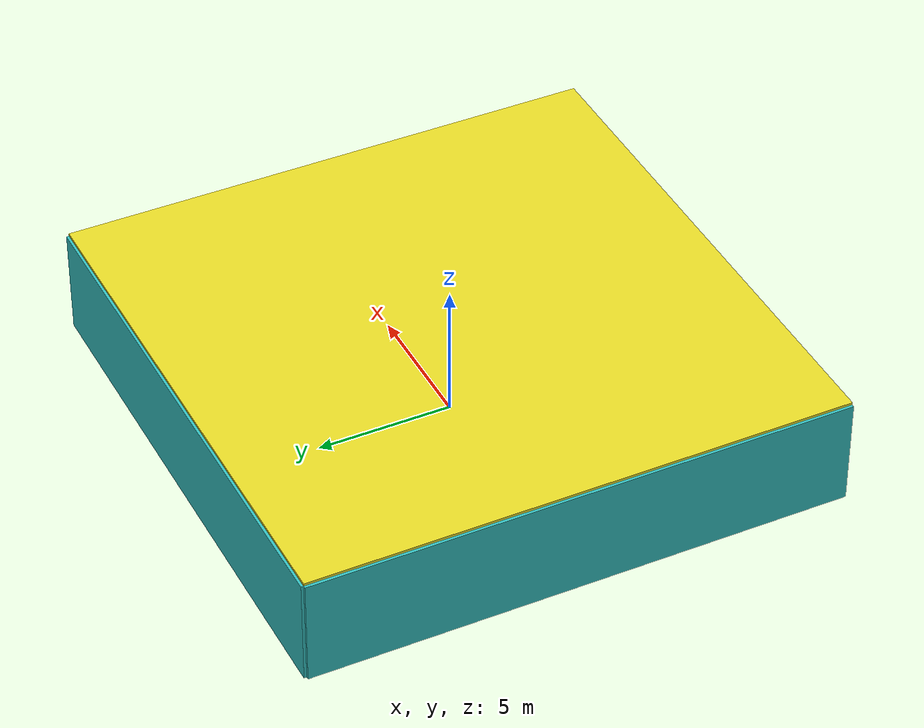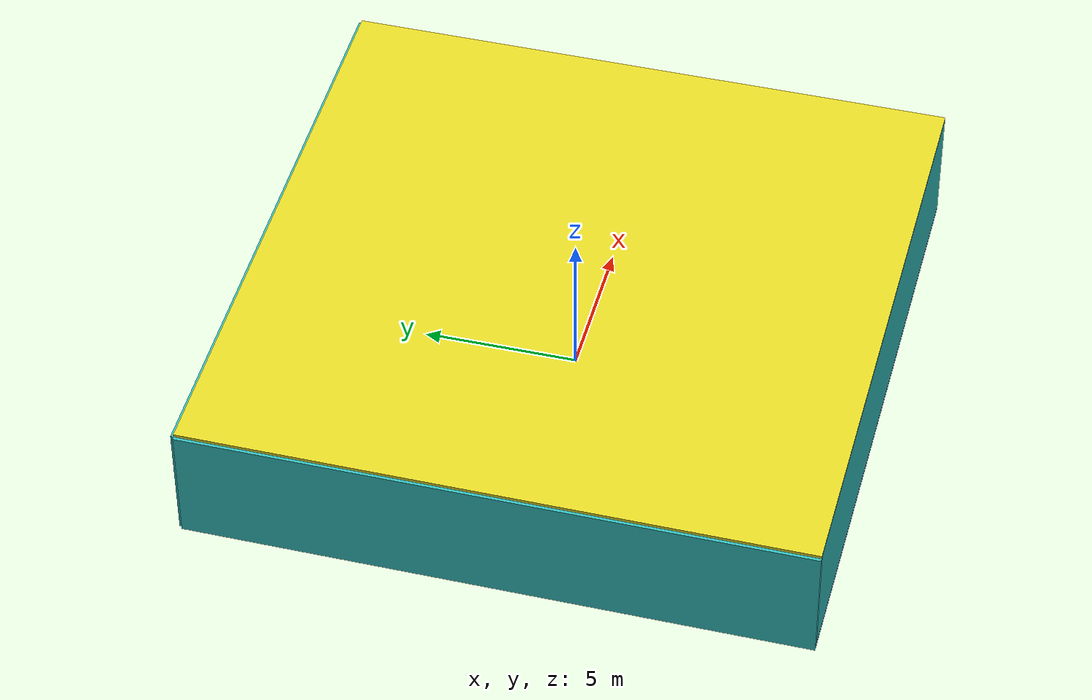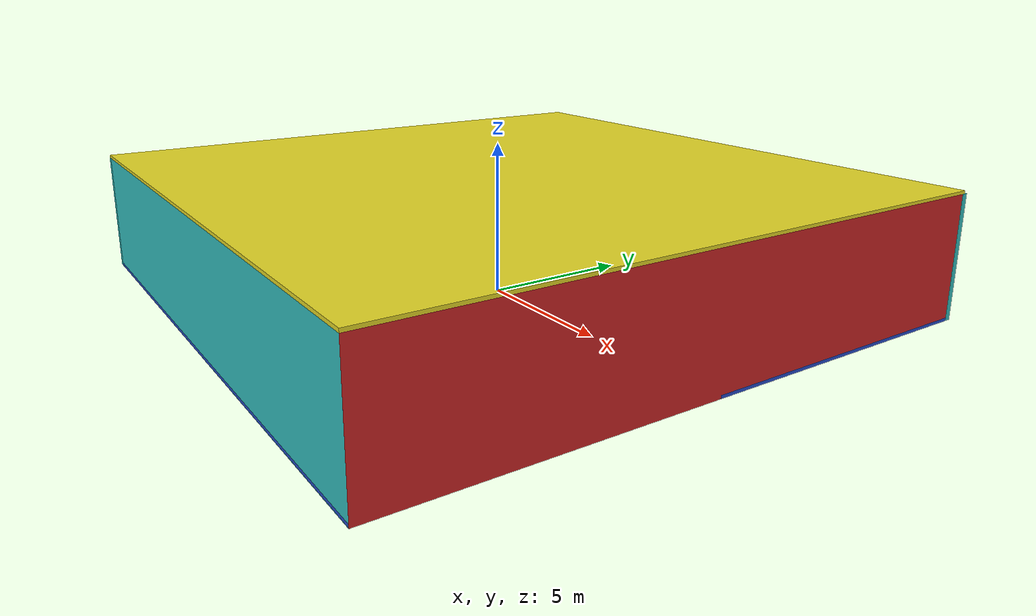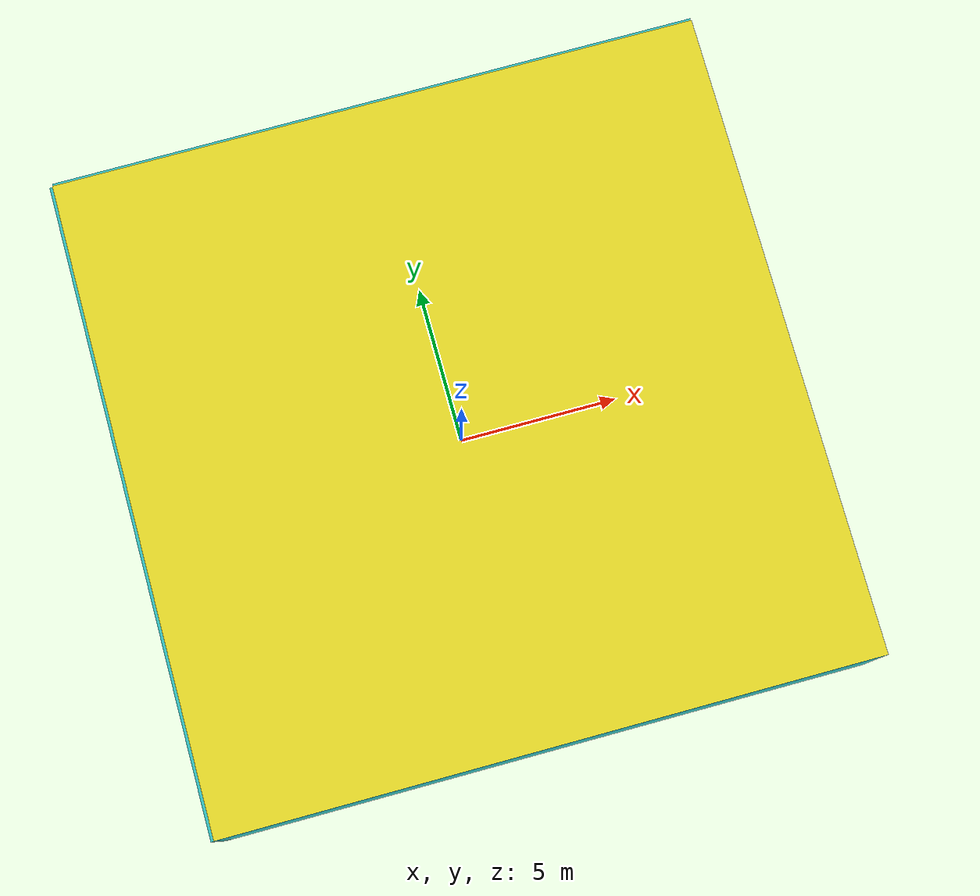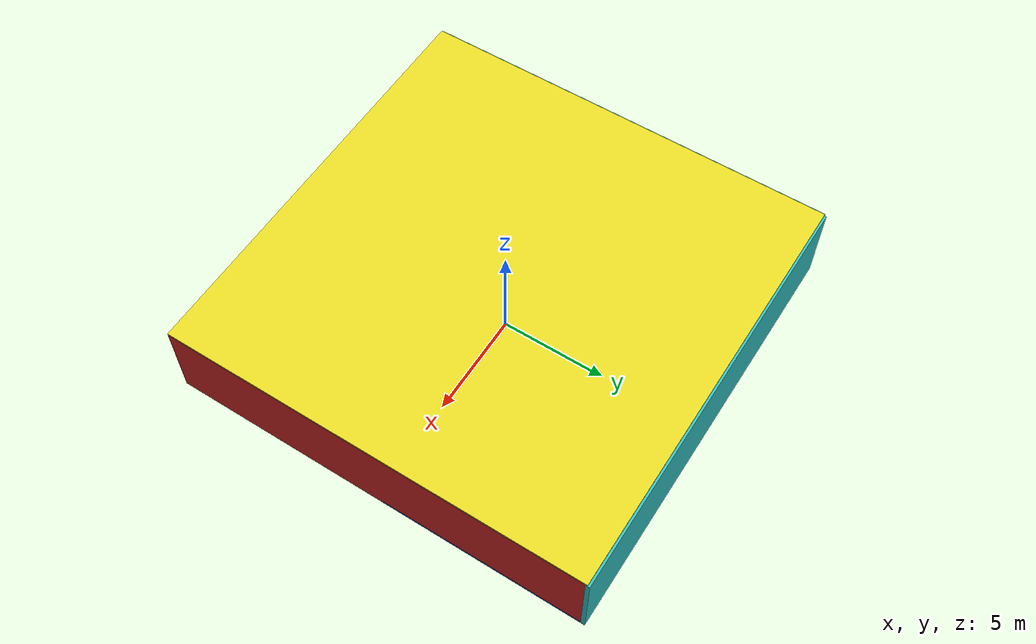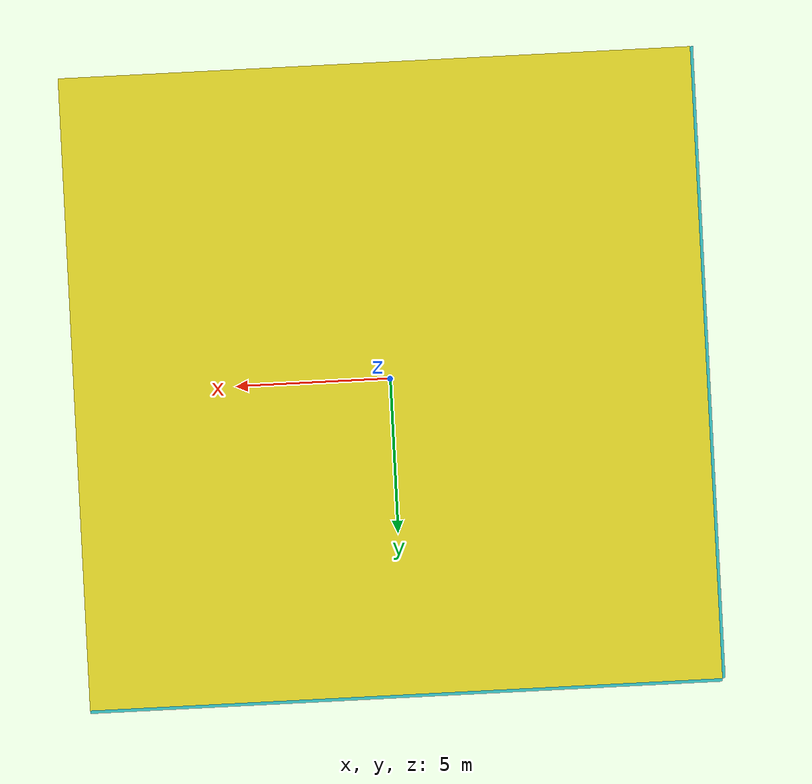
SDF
<sdf version="1.4">
 <world name="default">
  <physics type="ode">
   <max_step_size>0.001</max_step_size>
   <real_time_factor>1</real_time_factor>
   <real_time_update_rate>1000</real_time_update_rate>
   <gravity>0 0 -9.8</gravity>
  </physics>
  <scene><ambient>0.4 0.4 0.4 1</ambient><background>0.7 0.7 0.7 1</background><shadows>1</shadows></scene>
  <model name="Surrounding">
   <static>1</static>
   <link name="Ceiling">
    <collision name="Ceiling_Collision"><geometry><box><size>20 20 0.1</size></box></geometry></collision>
    <visual name="Ceiling_Visual">
     <geometry><box><size>20 20 0.1</size></box></geometry>
     <material>
      <script><uri>file://media/materials/scripts/gazebo.material</uri><name>Gazebo/Yellow</name></script>
     </material>
    </visual>
    <pose>0 0 4.05 0 0 0</pose>
   </link>
   <link name="Wall_South">
    <collision name="Wall_South_Collision">
     <geometry><box><size>20 0 4</size></box></geometry>
     <pose>0 0 2 0 -0 0</pose>
    </collision>
    <visual name="Wall_South_Visual">
     <pose>0 0 2 0 -0 0</pose>
     <geometry><box><size>20 0 4</size></box></geometry>
     <material>
      <script><uri>file://media/materials/scripts/gazebo.material</uri><name>Gazebo/TurquoiseGlow</name></script>
     </material>
    </visual>
    <velocity_decay><linear>0</linear><angular>0</angular></velocity_decay>
    <pose>0 -10 0 0 -0 0</pose>
   </link>
   <link name="Wall_East">
    <collision name="Wall_21_Collision">
     <geometry><box><size>20 0 4</size></box></geometry>
     <pose>0 0 2 0 -0 0</pose>
    </collision>
    <visual name="Wall_21_Visual">
     <pose>0 0 2 0 -0 0</pose>
     <geometry><box><size>20 0 4</size></box></geometry>
     <material>
      <script><uri>file://media/materials/scripts/gazebo.material</uri><name>Gazebo/RedGlow</name></script>
     </material>
    </visual>
    <velocity_decay><linear>0</linear><angular>0</angular></velocity_decay>
    <pose>10 0 0 0 -0 1.5708</pose>
   </link>
   <link name="Wall_North">
    <collision name="Wall_22_Collision">
     <geometry><box><size>20 0.2 4</size></box></geometry>
     <pose>0 0 2 0 -0 0</pose>
    </collision>
    <visual name="Wall_22_Visual">
     <pose>0 0 2 0 -0 0</pose>
     <geometry><box><size>20 0.2 4</size></box></geometry>
     <material>
      <script><uri>file://media/materials/scripts/gazebo.material</uri><name>Gazebo/Turquoise</name></script>
     </material>
    </visual>
    <velocity_decay><linear>0</linear><angular>0</angular></velocity_decay>
    <pose>0 10 0 0 -0 0</pose>
   </link>
   <link name="Wall_West">
    <collision name="Wall_23_Collision">
     <geometry><box><size>20 0.2 4</size></box></geometry>
     <pose>0 0 2 0 -0 0</pose>
    </collision>
    <visual name="Wall_23_Visual">
     <pose>0 0 2 0 -0 0</pose>
     <geometry><box><size>20 0.2 4</size></box></geometry>
     <material>
      <script><uri>file://media/materials/scripts/gazebo.material</uri><name>Gazebo/Turquoise</name></script>
     </material>
    </visual>
    <velocity_decay><linear>0</linear><angular>0</angular></velocity_decay>
    <pose>-10 0 0 0 0 -1.5708</pose>
   </link>
   <link name="Ground_link">
    <collision name="collision">
     <pose>0 0 .05 0 -0 0</pose>
     <geometry><box><size>20 20 0.1</size></box></geometry>
    </collision>
    <visual name="visual">
     <pose>0 0 .05 0 -0 0</pose>
     <geometry><box><size>20 20 0.1</size></box></geometry>
     <material>
      <script><uri>file://media/materials/scripts/gazebo.material</uri><name>Gazebo/BlueGlow</name></script>
     </material>
    </visual>
   </link>
   <static>1</static>
  </model>
  <spherical_coordinates>
   <surface_model>EARTH_WGS84</surface_model>
   <latitude_deg>0</latitude_deg>
   <longitude_deg>0</longitude_deg>
   <elevation>0</elevation>
   <heading_deg>0</heading_deg>
  </spherical_coordinates>
  <light name="lightball_0" type="diffuse">
   <diffuse>0.8 0.8 0.8 1</diffuse>
   <specular>0.2 0.2 0.2 1</specular>
   <attenuation>
    <range>100</range>
    <constant>0.7</constant>
    <linear>0.01</linear>
    <quadratic>0.001</quadratic>
   </attenuation>
   <direction>-0.5 0.1 -0.9</direction>
   <pose>7.86821524832 -3.85350791507 3.30400559471 0 0 0</pose>
  </light>
  <light name="lightball_1" type="diffuse">
   <diffuse>0.8 0.8 0.8 1</diffuse>
   <specular>0.2 0.2 0.2 1</specular>
   <attenuation>
    <range>100</range>
    <constant>0.7</constant>
    <linear>0.01</linear>
    <quadratic>0.001</quadratic>
   </attenuation>
   <direction>-0.5 0.1 -0.9</direction>
   <pose>-7.01998162564 0.966070352617 2.82512573158 0 0 0</pose>
  </light>
  <light name="lightball_2" type="diffuse">
   <diffuse>0.8 0.8 0.8 1</diffuse>
   <specular>0.2 0.2 0.2 1</specular>
   <attenuation>
    <range>100</range>
    <constant>0.7</constant>
    <linear>0.01</linear>
    <quadratic>0.001</quadratic>
   </attenuation>
   <direction>-0.5 0.1 -0.9</direction>
   <pose>3.64072944886 9.09422996512 3.58614893845 0 0 0</pose>
  </light>
  <light name="lightball_3" type="diffuse">
   <diffuse>0.8 0.8 0.8 1</diffuse>
   <specular>0.2 0.2 0.2 1</specular>
   <attenuation>
    <range>100</range>
    <constant>0.7</constant>
    <linear>0.01</linear>
    <quadratic>0.001</quadratic>
   </attenuation>
   <direction>-0.5 0.1 -0.9</direction>
   <pose>-3.96253297534 2.03180258748 0.815753119012 0 0 0</pose>
  </light>
  <light name="lightball_4" type="diffuse">
   <diffuse>0.8 0.8 0.8 1</diffuse>
   <specular>0.2 0.2 0.2 1</specular>
   <attenuation>
    <range>100</range>
    <constant>0.7</constant>
    <linear>0.01</linear>
    <quadratic>0.001</quadratic>
   </attenuation>
   <direction>-0.5 0.1 -0.9</direction>
   <pose>3.14958112381 -6.90858048913 3.37493298233 0 0 0</pose>
  </light>
  <light name="lightball_5" type="diffuse">
   <diffuse>0.8 0.8 0.8 1</diffuse>
   <specular>0.2 0.2 0.2 1</specular>
   <attenuation>
    <range>100</range>
    <constant>0.7</constant>
    <linear>0.01</linear>
    <quadratic>0.001</quadratic>
   </attenuation>
   <direction>-0.5 0.1 -0.9</direction>
   <pose>-9.31038082029 8.44714193016 3.28444763081 0 0 0</pose>
  </light>
  <light name="lightball_6" type="diffuse">
   <diffuse>0.8 0.8 0.8 1</diffuse>
   <specular>0.2 0.2 0.2 1</specular>
   <attenuation>
    <range>100</range>
    <constant>0.7</constant>
    <linear>0.01</linear>
    <quadratic>0.001</quadratic>
   </attenuation>
   <direction>-0.5 0.1 -0.9</direction>
   <pose>1.71948153242 6.13544610617 1.21304432026 0 0 0</pose>
  </light>
  <include><uri>model://cabinet</uri><pose>-8.02983625591 -6.94160157992 0 0 0 3.07265554654</pose></include>
  <include><uri>model://cabinet</uri><pose>-4.11569790918 -7.41115677198 0 0 0 0.563425019803</pose></include>
  <include>
   <uri>model://robocup_3Dsim_goal</uri>
   <pose>-4.46012723536 4.2167302955 0 0 0 2.20917342107</pose>
  </include>
  <include>
   <uri>model://construction_cone</uri>
   <pose>-4.12987367521 7.26482771203 0 0 0 2.00864579299</pose>
  </include>
  <include><uri>model://table</uri><pose>5.29060678997 -1.64717435694 0 0 0 0.414256710464</pose></include>
  <include>
   <uri>model://construction_cone</uri>
   <pose>3.88319392702 0.820595428418 0 0 0 0.237569075973</pose>
  </include>
  <include><uri>model://cabinet</uri><pose>8.13604113974 -6.98632816428 0 0 0 0.825835606799</pose></include>
  <include><uri>model://cabinet</uri><pose>8.01145888881 -1.33910677529 0 0 0 0.491707398721</pose></include>
  <include><uri>model://cabinet</uri><pose>7.02633566213 7.95627191212 0 0 0 2.01966131109</pose></include>
 </world>
</sdf>

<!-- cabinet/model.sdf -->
<sdf version="1.5">
  <model name="cabinet">
    <static>true</static>
    <link name="cabinet_bottom_plate">
      <inertial>
        <pose>0 0 -1 0 0 0</pose>
        <inertia>
          <ixx>2.050000</ixx>
          <ixy>0</ixy>
          <ixz>0</ixz>
          <iyy>2.050000</iyy>
          <iyz>0</iyz>
          <izz>2.050000</izz>
        </inertia>
        <mass>25.000000</mass>
      </inertial>
      <collision name="cabinet_bottom_plate_geom">
        <pose>0 0 0.010000 0 0 0</pose>
        <geometry>
          <box>
            <size>0.450000 0.450000 0.020000</size>
          </box>
        </geometry>
      </collision>
      <visual name="cabinet_bottom_plate_geom_visual">
        <pose>0 0 0.010000 0 0 0</pose>
        <geometry>
          <box>
            <size>0.450000 0.450000 0.020000</size>
          </box>
        </geometry>
        <material>
          <script>
            <uri>model://media/materials/scripts/gazebo.material</uri>
            <name>Gazebo/Wood</name>
          </script>
        </material>
      </visual>
      <collision name="cabinet_bottom_plate_geom_cabinet_back_plate">
        <pose>0.235000 0 0.510000 0 0 0</pose>
        <geometry>
          <box>
            <size>0.020000 0.450000 1.020000</size>
          </box>
        </geometry>
      </collision>
      <visual name="cabinet_bottom_plate_geom_cabinet_back_plate_visual">
        <pose>0.235000 0 0.510000 0 0 0</pose>
        <geometry>
          <box>
            <size>0.020000 0.450000 1.020000</size>
          </box>
        </geometry>
        <material>
          <script>
            <uri>model://media/materials/scripts/gazebo.material</uri>
            <name>Gazebo/Wood</name>
          </script>
        </material>
      </visual>
      <collision name="cabinet_bottom_plate_geom_cabinet_left_plate">
        <pose>0 0.235000 0.510000 0 0 0</pose>
        <geometry>
          <box>
            <size>0.450000 0.020000 1.020000</size>
          </box>
        </geometry>
      </collision>
      <visual name="cabinet_bottom_plate_geom_cabinet_left_plate_visual">
        <pose>0 0.235000 0.510000 0 0 0</pose>
        <geometry>
          <box>
            <size>0.450000 0.020000 1.020000</size>
          </box>
        </geometry>
        <material>
          <script>
            <uri>model://media/materials/scripts/gazebo.material</uri>
            <name>Gazebo/Wood</name>
          </script>
        </material>
      </visual>
      <collision name="cabinet_bottom_plate_geom_cabinet_middle_plate">
        <pose>0 0 0.510000 0 0 0</pose>
        <geometry>
          <box>
            <size>0.450000 0.450000 0.020000</size>
          </box>
        </geometry>
      </collision>
      <visual name="cabinet_bottom_plate_geom_cabinet_middle_plate_visual">
        <pose>0 0 0.510000 0 0 0</pose>
        <geometry>
          <box>
            <size>0.450000 0.450000 0.020000</size>
          </box>
        </geometry>
        <material>
          <script>
            <uri>model://media/materials/scripts/gazebo.material</uri>
            <name>Gazebo/Wood</name>
          </script>
        </material>
      </visual>
      <collision name="cabinet_bottom_plate_geom_cabinet_right_plate">
        <pose>0 -0.235000 0.510000 0 0 0</pose>
        <geometry>
          <box>
            <size>0.450000 0.020000 1.020000</size>
          </box>
        </geometry>
      </collision>
      <visual name="cabinet_bottom_plate_geom_cabinet_right_plate_visual">
        <pose>0 -0.235000 0.510000 0 0 0</pose>
        <geometry>
          <box>
            <size>0.450000 0.020000 1.020000</size>
          </box>
        </geometry>
        <material>
          <script>
            <uri>model://media/materials/scripts/gazebo.material</uri>
            <name>Gazebo/Wood</name>
          </script>
        </material>
      </visual>
      <collision name="cabinet_bottom_plate_geom_cabinet_top_plate">
        <pose>0 0 1.010000 0 0 0</pose>
        <geometry>
          <box>
            <size>0.450000 0.450000 0.020000</size>
          </box>
        </geometry>
      </collision>
      <visual name="cabinet_bottom_plate_geom_cabinet_top_plate_visual">
        <pose>0 0 1.010000 0 0 0</pose>
        <geometry>
          <box>
            <size>0.450000 0.450000 0.020000</size>
          </box>
        </geometry>
        <material>
          <script>
            <uri>model://media/materials/scripts/gazebo.material</uri>
            <name>Gazebo/Wood</name>
          </script>
        </material>
      </visual>
    </link>
  </model>
</sdf>

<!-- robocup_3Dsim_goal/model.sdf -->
<sdf version="1.5">
  <model name="robocup_3d_goal">
    <static>true</static>
    <link name="left_post">
      <pose>0 1.05 0.45 0 0 0</pose>
      <collision name="collision">
        <geometry>
          <cylinder>
            <radius>0.05</radius>
            <length>0.9</length>
          </cylinder>
        </geometry>
      </collision>
      <visual name="visual">
        <geometry>
          <cylinder>
            <radius>0.05</radius>
            <length>0.9</length>
          </cylinder>
        </geometry>
        <material>
          <script>
            <uri>file://media/materials/scripts/gazebo.material</uri>
            <name>Gazebo/ZincYellow</name>
          </script>
        </material>
      </visual>
    </link>
    <link name="left_support_horiz_lower">
      <pose>0.30 1.05 0.01 0 0 0</pose>
      <collision name="collision">
        <geometry>
          <box>
            <size>0.50 0.02 0.02</size>
          </box>
        </geometry>
      </collision>
      <visual name="visual">
        <geometry>
          <box>
            <size>0.50 0.02 0.02</size>
          </box>
        </geometry>
        <material>
          <script>
            <uri>file://media/materials/scripts/gazebo.material</uri>
            <name>Gazebo/White</name>
          </script>
        </material>
      </visual>
    </link>
    <link name="left_support_horiz_upper">
      <pose>0.30 1.05 0.79 0 0 0</pose>
      <collision name="collision">
        <geometry>
          <box>
            <size>0.50 0.02 0.02</size>
          </box>
        </geometry>
      </collision>
      <visual name="visual">
        <geometry>
          <box>
            <size>0.50 0.02 0.02</size>
          </box>
        </geometry>
        <material>
          <script>
            <uri>file://media/materials/scripts/gazebo.material</uri>
            <name>Gazebo/White</name>
          </script>
        </material>
      </visual>
    </link>
    <link name="left_support_vertical">
      <pose>0.56 1.05 0.4 0 1.5708 0</pose>
      <collision name="collision">
        <geometry>
          <box>
            <size>0.80 0.02 0.02</size>
          </box>
        </geometry>
      </collision>
      <visual name="visual">
        <geometry>
          <box>
            <size>0.80 0.02 0.02</size>
          </box>
        </geometry>
        <material>
          <script>
            <uri>file://media/materials/scripts/gazebo.material</uri>
            <name>Gazebo/White</name>
          </script>
        </material>
      </visual>
    </link>
    <link name="right_support_horiz_lower">
      <pose>0.30 -1.05 0.01 0 0 0</pose>
      <collision name="collision">
        <geometry>
          <box>
            <size>0.50 0.02 0.02</size>
          </box>
        </geometry>
      </collision>
      <visual name="visual">
        <geometry>
          <box>
            <size>0.50 0.02 0.02</size>
          </box>
        </geometry>
        <material>
          <script>
            <uri>file://media/materials/scripts/gazebo.material</uri>
            <name>Gazebo/White</name>
          </script>
        </material>
      </visual>
    </link>
    <link name="right_support_horiz_upper">
      <pose>0.30 -1.05 0.79 0 0 0</pose>
      <collision name="collision">
        <geometry>
          <box>
            <size>0.50 0.02 0.02</size>
          </box>
        </geometry>
      </collision>
      <visual name="visual">
        <geometry>
          <box>
            <size>0.50 0.02 0.02</size>
          </box>
        </geometry>
        <material>
          <script>
            <uri>file://media/materials/scripts/gazebo.material</uri>
            <name>Gazebo/White</name>
          </script>
        </material>
      </visual>
    </link>
    <link name="right_support_vertical">
      <pose>0.56 -1.05 0.4 0 1.5708 0</pose>
      <collision name="collision">
        <geometry>
          <box>
            <size>0.80 0.02 0.02</size>
          </box>
        </geometry>
      </collision>
      <visual name="visual">
        <geometry>
          <box>
            <size>0.80 0.02 0.02</size>
          </box>
        </geometry>
        <material>
          <script>
            <uri>file://media/materials/scripts/gazebo.material</uri>
            <name>Gazebo/White</name>
          </script>
        </material>
      </visual>
    </link>
    <link name="center_support_horiz_lower">
      <pose>0.56 0 0.01 0 1.5708 0</pose>
      <collision name="collision">
        <geometry>
          <box>
            <size>0.02 2.08 0.02</size>
          </box>
        </geometry>
      </collision>
      <visual name="visual">
        <geometry>
          <box>
            <size>0.02 2.08 0.02</size>
          </box>
        </geometry>
        <material>
          <script>
            <uri>file://media/materials/scripts/gazebo.material</uri>
            <name>Gazebo/White</name>
          </script>
        </material>
      </visual>
    </link>
    <link name="center_support_horiz_upper">
      <pose>0.56 0 0.79 0 1.5708 0</pose>
      <collision name="collision">
        <geometry>
          <box>
            <size>0.02 2.08 0.02</size>
          </box>
        </geometry>
      </collision>
      <visual name="visual">
        <geometry>
          <box>
            <size>0.02 2.08 0.02</size>
          </box>
        </geometry>
        <material>
          <script>
            <uri>file://media/materials/scripts/gazebo.material</uri>
            <name>Gazebo/White</name>
          </script>
        </material>
      </visual>
    </link>
    <link name="right_post">
      <pose>0 -1.05 0.45 0 0 0</pose>
      <collision name="collision">
        <geometry>
          <cylinder>
            <radius>0.05</radius>
            <length>0.9</length>
          </cylinder>
        </geometry>
      </collision>
      <visual name="visual">
        <geometry>
          <cylinder>
            <radius>0.05</radius>
            <length>0.9</length>
          </cylinder>
        </geometry>
        <material>
          <script>
            <uri>file://media/materials/scripts/gazebo.material</uri>
            <name>Gazebo/ZincYellow</name>
          </script>
        </material>
      </visual>
    </link>
    <link name="crossbar">
      <pose>0 0 0.85 1.57 1.57 0</pose>
      <collision name="collision">
        <geometry>
          <cylinder>
            <radius>0.05</radius>
            <length>2.0</length>
          </cylinder>
        </geometry>
      </collision>
      <visual name="visual">
        <geometry>
          <cylinder>
            <radius>0.05</radius>
            <length>2.0</length>
          </cylinder>
        </geometry>
        <material>
          <script>
            <uri>file://media/materials/scripts/gazebo.material</uri>
            <name>Gazebo/ZincYellow</name>
          </script>
        </material>
      </visual>
    </link>
    <link name="center_net">
      <pose>0.56 0 0.40 0 0 0</pose>
      <collision name="collision">
        <geometry>
          <box>
            <size>0.01 2.1 0.80</size>
          </box>
        </geometry>
      </collision>
      <visual name="visual">
        <geometry>
          <box>
            <size>0.01 2.1 0.80</size>
          </box>
        </geometry>
        <material>
          <script>
            <uri>model://../model_source/models/robocup09_spl_field/materials/scripts/</uri>
            <uri>model://../model_source/models/robocup09_spl_field/materials/textures/</uri>
            <name>RoboCup/Net</name>
          </script>
        </material>
      </visual>
    </link>
    <link name="left_net">
      <pose>0.30 1.05 0.40 0 0 0</pose>
      <collision name="collision">
        <geometry>
          <box>
            <size>0.50 0.01 0.76</size>
          </box>
        </geometry>
      </collision>
      <visual name="visual">
        <geometry>
          <box>
            <size>0.50 0.01 0.76</size>
          </box>
        </geometry>
        <material>
          <script>
            <uri>model://../model_source/models/robocup09_spl_field/materials/scripts/</uri>
            <uri>model://../model_source/models/robocup09_spl_field/materials/textures/</uri>
            <name>RoboCup/Net</name>
          </script>
        </material>
      </visual>
    </link>
    <link name="right_net">
      <pose>0.30 -1.05 0.40 0 0 0</pose>
      <collision name="collision">
        <geometry>
          <box>
            <size>0.50 0.01 0.76</size>
          </box>
        </geometry>
      </collision>
      <visual name="visual">
        <geometry>
          <box>
            <size>0.50 0.01 0.76</size>
          </box>
        </geometry>
        <material>
          <script>
            <uri>model://../model_source/models/robocup09_spl_field/materials/scripts/</uri>
            <uri>model://../model_source/models/robocup09_spl_field/materials/textures/</uri>
            <name>RoboCup/Net</name>
          </script>
        </material>
      </visual>
    </link>
  </model>
</sdf>

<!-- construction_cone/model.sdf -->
<sdf version="1.5">
  <model name="Construction Cone">
    <link name="link">
      <collision name="collision">
        <geometry>
          <mesh>
            <scale>10 10 10</scale>
            <uri>file://isr-testbed/construction_cone/meshes/construction_cone.dae</uri>
          </mesh>
        </geometry>
      </collision>
      <visual name="visual">
        <geometry>
          <mesh>
            <scale>10 10 10</scale>
            <uri>file://isr-testbed/construction_cone/meshes/construction_cone.dae</uri>
          </mesh>
        </geometry>
      </visual>
    </link>
  </model>
</sdf>

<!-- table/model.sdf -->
<sdf version="1.5">
  <model name="table">
    <static>true</static>
    <link name="link">
      <collision name="surface">
        <pose>0 0 1.0 0 0 0</pose>
        <geometry>
          <box>
            <size>1.5 0.8 0.03</size>
          </box>
        </geometry>
        <surface>
          <friction>
            <ode>
              <mu>0.6</mu>
              <mu2>0.6</mu2>
            </ode>
          </friction>
        </surface>
      </collision>
      <visual name="visual1">
        <pose>0 0 1.0 0 0 0</pose>
        <geometry>
          <box>
            <size>1.5 0.8 0.03</size>
          </box>
        </geometry>
        <material>
          <script>
            <uri>model://media/materials/scripts/gazebo.material</uri>
            <name>Gazebo/Wood</name>
          </script>
        </material>
      </visual>
      <collision name="front_left_leg">
        <pose>0.68 0.38 0.5 0 0 0</pose>
        <geometry>
          <cylinder>
            <radius>0.02</radius>
            <length>1.0</length>
          </cylinder>
        </geometry>
      </collision>
      <visual name="front_left_leg">
        <pose>0.68 0.38 0.5 0 0 0</pose>
        <geometry>
          <cylinder>
            <radius>0.02</radius>
            <length>1.0</length>
          </cylinder>
        </geometry>
        <material>
          <script>
            <uri>model://media/materials/scripts/gazebo.material</uri>
            <name>Gazebo/Grey</name>
          </script>
        </material>
      </visual>
      <collision name="front_right_leg">
        <pose>0.68 -0.38 0.5 0 0 0</pose>
        <geometry>
          <cylinder>
            <radius>0.02</radius>
            <length>1.0</length>
          </cylinder>
        </geometry>
      </collision>
      <visual name="front_right_leg">
        <pose>0.68 -0.38 0.5 0 0 0</pose>
        <geometry>
          <cylinder>
            <radius>0.02</radius>
            <length>1.0</length>
          </cylinder>
        </geometry>
        <material>
          <script>
            <uri>model://media/materials/scripts/gazebo.material</uri>
            <name>Gazebo/Grey</name>
          </script>
        </material>
      </visual>
      <collision name="back_right_leg">
        <pose>-0.68 -0.38 0.5 0 0 0</pose>
        <geometry>
          <cylinder>
            <radius>0.02</radius>
            <length>1.0</length>
          </cylinder>
        </geometry>
      </collision>
      <visual name="back_right_leg">
        <pose>-0.68 -0.38 0.5 0 0 0</pose>
        <geometry>
          <cylinder>
            <radius>0.02</radius>
            <length>1.0</length>
          </cylinder>
        </geometry>
        <material>
          <script>
            <uri>model://media/materials/scripts/gazebo.material</uri>
            <name>Gazebo/Grey</name>
          </script>
        </material>
      </visual>
      <collision name="back_left_leg">
        <pose>-0.68 0.38 0.5 0 0 0</pose>
        <geometry>
          <cylinder>
            <radius>0.02</radius>
            <length>1.0</length>
          </cylinder>
        </geometry>
      </collision>
      <visual name="back_left_leg">
        <pose>-0.68 0.38 0.5 0 0 0</pose>
        <geometry>
          <cylinder>
            <radius>0.02</radius>
            <length>1.0</length>
          </cylinder>
        </geometry>
        <material>
          <script>
            <uri>model://media/materials/scripts/gazebo.material</uri>
            <name>Gazebo/Grey</name>
          </script>
        </material>
      </visual>
    </link>
  </model>
</sdf>
